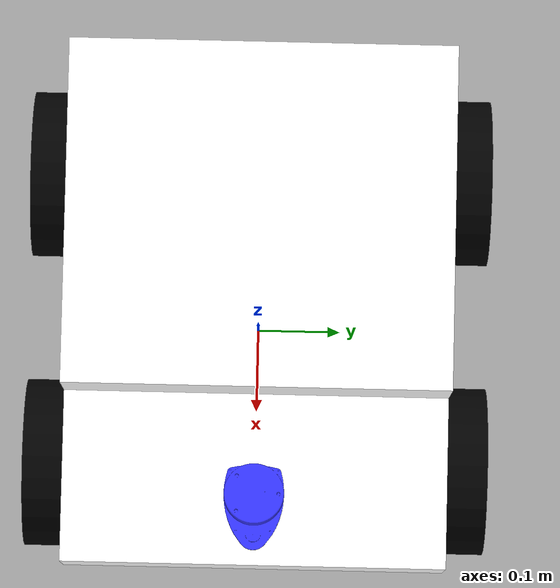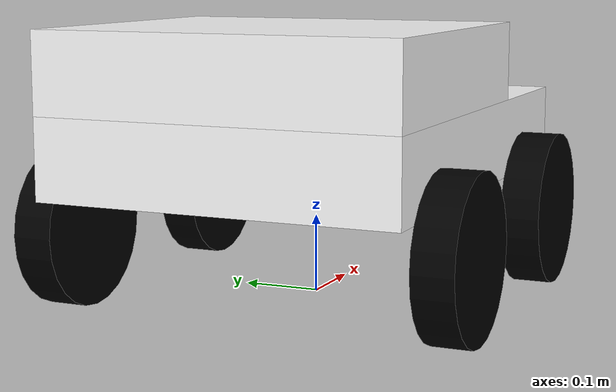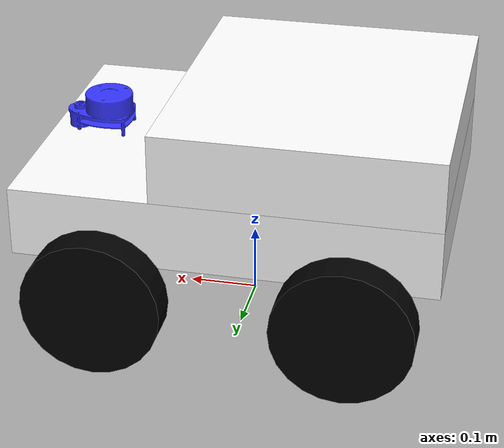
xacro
<?xml version="1.0"?>
<robot xmlns:xacro="http://www.ros.org/wiki/xacro" name="myrobot">

  <xacro:include filename="$(find description_pkg)/urdf/material.xacro"/>

  <link name="base_link">
  </link>

   <joint name="joint_base" type="fixed">
        <parent link="base_link"/>
        <child link="chassis"/>
        <origin xyz="0.0 0.0 0.00" rpy="0.0 0.0 0.0"/>
  </joint>

  <!--________________ CHASSIS LINK________________ -->
  <link name="chassis">
        <inertial>
            <origin xyz="0.0 0.0 0.0"/>
            <mass value="20"/>
            <inertia ixx="0.1" ixy="0.0" ixz="0.0" iyy="0.1" iyz="0.0" izz="0.1"/>
        </inertial>
        <visual name='1'>
            <origin xyz="0.0 0.0 0.20" />
            <geometry>
                <box size="0.6 0.45 0.1"/>
            </geometry>
            <material name="white"/>
        </visual>
        <collision name='1'>
            <origin xyz="0.0 0.0 0.2" rpy="0.0 0.0 0.0"/>
            <geometry>
                <box size="0.6 0.45 0.1"/>
            </geometry>
        </collision>
        <visual name='2'>
            <origin xyz="-0.10 0.0 0.30" />
            <geometry>
                <box size="0.4 0.45 0.1"/>
            </geometry>
            <material name="white"/>
        </visual>
        <collision name='2'>
            <origin xyz="-0.10 0.0 0.30" />
            <geometry>
                <box size="0.4 0.45 0.1"/>
            </geometry>
        </collision>
      <collision name="back_right_wheel_collision">
        <origin rpy="0 1.5707 1.5707" xyz="-0.175 -0.25 0.1" />
        <geometry>
          <cylinder length="0.05" radius="0.1"/>
        </geometry>
      </collision>

      <visual name="back_right_wheel_visual">
        <origin rpy="0 1.5707 1.5707" xyz="-0.175 -0.25 0.1"/>
        <geometry>
          <cylinder length="0.05" radius="0.1"/>
        </geometry>
        <material name="Black"/>
      </visual>

          <collision name="back_left_wheel_collision">
        <origin rpy="0 1.5707 1.5707" xyz="-0.175 0.25 0.1" />
        <geometry>
          <cylinder length="0.05" radius="0.1"/>
        </geometry>
      </collision>

      <visual name="back_left_wheel_visual">
        <origin rpy="0 1.5707 1.5707" xyz="-0.175 0.25 0.1"/>
        <geometry>
          <cylinder length="0.05" radius="0.1"/>
        </geometry>
        <material name="Black"/>
      </visual>
 </link>

  <!-- ________________FRONT RIGHT WHEEL LINK________________   -->
  <link name="front_left_wheel">
    <inertial>
      <origin rpy="0 0 0 " xyz="0 0 0"/>
      <mass value="5"/>
      <inertia ixx="0.1" ixy="0" ixz="0" iyy="0.1" iyz="0" izz="0.1"/>
    </inertial>

    <collision name="front_left_wheel_collision">
      <origin rpy="0 1.5707 1.5707" xyz="0 0 0" />
      <geometry>
        <cylinder length="0.05" radius="0.1"/>
      </geometry>
    </collision>

    <visual name="front_left_wheel_visual">
      <origin rpy="0 1.5707 1.5707" xyz="0 0 0"/>
      <geometry>
        <cylinder length="0.05" radius="0.1"/>
      </geometry>
      <material name="Black"/>
    </visual>

  </link>
  <joint name="joint_front_left_wheel" type="continuous">
    <origin rpy="0 0 0" xyz="0.175 0.25 0.1"/>
    <child link="front_left_wheel" />
    <parent link="chassis"/>
    <axis rpy="0 0 0" xyz="0 1 0"/>
  </joint>

  <!--________________ FRONT LEFTT WHEEL LINK________________ -->
  <link name="front_right_wheel">
    <inertial>
      <mass value="5"/>
      <origin rpy="0 0 0" xyz="0 0 0"/>
      <inertia ixx="0.1" ixy="0" ixz="0" iyy="0.1" iyz="0" izz="0.1"/>
    </inertial>

    <collision name="front_right_wheel_collision">
      <origin rpy="0 1.5707 1.5707" xyz="0 0 0" />
      <geometry>
        <cylinder length="0.05" radius="0.1"/>
      </geometry>
    </collision>

    <visual name="front_right_wheel_visual">
      <origin rpy="0 1.5707 1.5707" xyz="0 0 0"/>
      <geometry>
        <cylinder length="0.05" radius="0.1"/>
      </geometry>
      <material name="Black"/>
    </visual>

  </link>
  <joint name="joint_front_right_wheel" type="continuous">
    <origin rpy="0 0 0" xyz="0.175 -0.25 0.1"/>
    <child link="front_right_wheel" />
    <parent link="chassis"/>
    <axis rpy="0 0 0" xyz="0 1 0"/>
  </joint>

  <!--________________ LIDAR LINK________________ -->
  <link name="lidar">
    <inertial>
       <origin xyz="0.0 0.0 0.0" rpy="0.0 0.0 0.0"/>
      <mass value=".10"/>
      <inertia ixx="1.0" ixy="0.0" ixz="0.0" iyy="1.0" iyz="0.0" izz="1.0"/>
    </inertial>
    <visual>
      <origin xyz=" 0 0 0" rpy="0 0 0"/>
      <geometry>
     <mesh filename="package://description_pkg/meshes/lidar.STL" />
      </geometry>
      <material name="Blue"/>
    </visual>
    <collision>
      <origin xyz="0.0 0.0 0.0" rpy="0.0 0.0 0.0"/>
      <geometry>
        <mesh filename="package://description_pkg/meshes/lidar.STL" />
       </geometry>
    </collision>
    </link>
    <joint name="lider_joint" type="fixed">
        <origin xyz="0.220 0.0 0.305" rpy="0 0 0"/>
        <parent link="chassis"/>
        <child link="lidar"/>
        <axis xyz="0 0 0" />
    </joint>

  <gazebo>
   <plugin name="differential_drive_controller" filename="libgazebo_ros_diff_drive.so">
       <updateRate>30.0</updateRate>
      <commandTopic>cmd_vel</commandTopic>
      <odometryTopic>odom</odometryTopic>
      <odometryFrame>odom</odometryFrame>
      <odometrySource>world</odometrySource>
      <publishOdomTF>true</publishOdomTF>
      <robotBaseFrame>base_link</robotBaseFrame>
      <publishWheelTF>false</publishWheelTF>
      <publishTf>true</publishTf>
      <publishWheelJointState>true</publishWheelJointState>
      <legacyMode>false</legacyMode>
      <updateRate>30</updateRate>
      <leftJoint>joint_front_left_wheel</leftJoint>
      <rightJoint>joint_front_right_wheel</rightJoint>
      <wheelSeparation>0.5</wheelSeparation>
      <wheelDiameter>0.2</wheelDiameter>
      <wheelAcceleration>10</wheelAcceleration>
      <wheelTorque>20</wheelTorque>
      <rosDebugLevel>na</rosDebugLevel>
    </plugin>
  </gazebo>

  <gazebo reference="chassis">
    <material>Gazebo/White</material>
  </gazebo>
  <gazebo reference="front_right_wheel">
    <material>Gazebo/White</material>
  </gazebo>
  <gazebo reference="front_left_wheel">
    <material>Gazebo/White</material>
  </gazebo>
  <gazebo reference="lidar">
    <material>Gazebo/Black</material>
  </gazebo>

     <!-- LIDER -->
    <gazebo reference="lidar">
        <sensor type="ray" name="head_hokuyo_sensor">
            <pose>0 0 0 0 0 0</pose>
            <visualize>true</visualize>
            <update_rate>40</update_rate>
            <ray>
                <scan>
                    <horizontal>
                        <samples>360</samples>
                        <resolution>1</resolution>
                        <min_angle>-1.570796327</min_angle>
                        <max_angle>1.570796327</max_angle>
                    </horizontal>
                </scan>
                <range>
                    <min>0.10</min>
                    <max>30.0</max>
                    <resolution>0.01</resolution>
                </range>
                <noise>
                    <type>gaussian</type>
                    <mean>0.0</mean>
                    <stddev>0.01</stddev>
                </noise>
            </ray>
            <plugin name="gazebo_ros_head_hokuyo_controller" filename="libgazebo_ros_laser.so">
                <topicName>scan</topicName>
                <frameName>lidar</frameName>
            </plugin>
        </sensor>
    </gazebo>

</robot>

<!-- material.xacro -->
<robot xmlns:xacro="http://www.ros.org/wiki/xacro" name="myrobot">

    <material  name="white">
        <color rgba="1 1 1 1"/>
    </material>

    <material  name="Blue">
        <color rgba="0.2 0.2 1 1"/>
    </material>

    <material  name="Red">
        <color rgba="0.8 0.0 0.0 1.0"/>
    </material>

    <material  name="Black">
        <color rgba="0 0 0 1"/>
    </material>

</robot>
